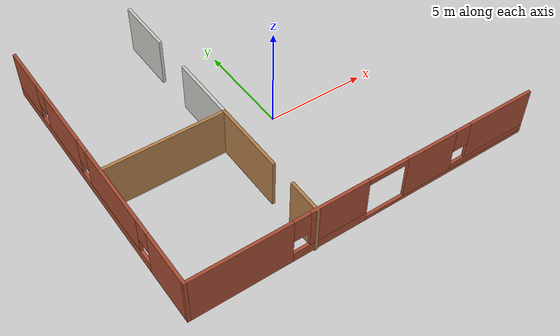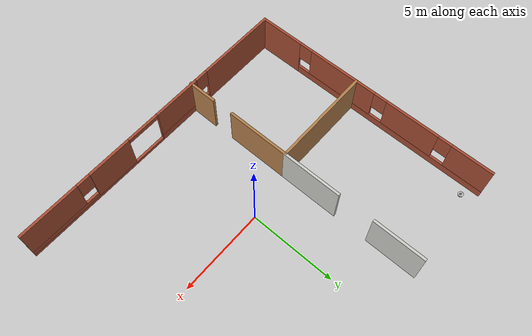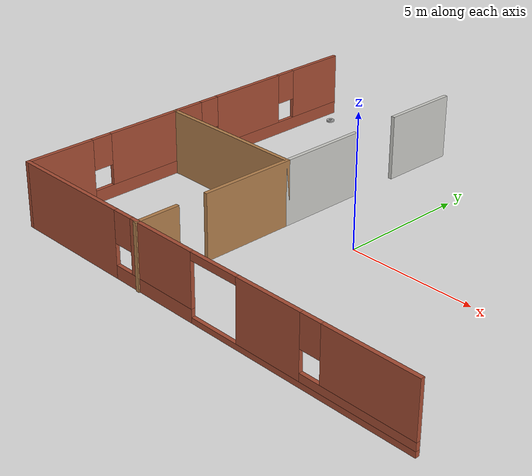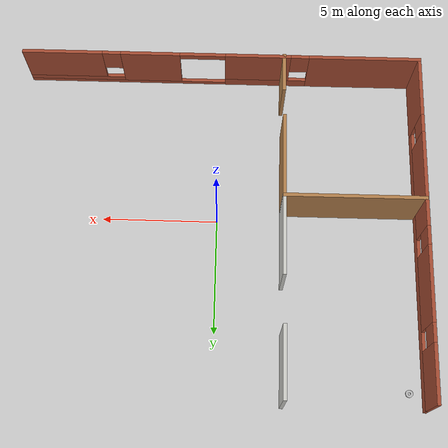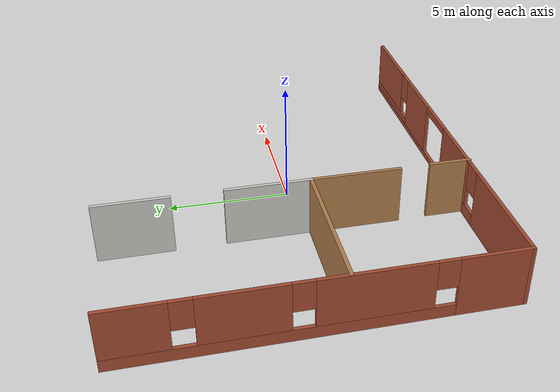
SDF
<sdf version="1.6">
 <model name="BuildingOne">
  <link name="Wall_0">
   <pose>-8.67851 0.522825 0 0 -0 1.5708</pose>
   <visual name="Wall_0_Visual_0">
    <pose>-6.13494 0 1.25 0 -0 0</pose>
    <geometry><box><size>2.73012 0.15 2.5</size></box></geometry>
    <material>
     <script><uri>file://media/materials/scripts/gazebo.material</uri><name>Gazebo/Bricks</name></script>
     <ambient>1 1 1 1</ambient>
     <shader type="pixel"/>
     <diffuse>1 1 1 1</diffuse>
     <specular>0.2 0.2 0.2 1</specular>
     <emissive>0 0 0 1</emissive>
    </material>
    <meta><layer>0</layer></meta>
   </visual>
   <visual name="Wall_0_Visual_1">
    <pose>1.36506 0 0.25 0 -0 0</pose>
    <geometry><box><size>12.2699 0.15 0.5</size></box></geometry>
    <material>
     <script><uri>file://media/materials/scripts/gazebo.material</uri><name>Gazebo/Bricks</name></script>
     <ambient>1 1 1 1</ambient>
     <shader type="pixel"/>
     <diffuse>1 1 1 1</diffuse>
     <specular>0.2 0.2 0.2 1</specular>
     <emissive>0 0 0 1</emissive>
    </material>
    <meta><layer>0</layer></meta>
   </visual>
   <visual name="Wall_0_Visual_2">
    <pose>-1.85526 0 1.5 0 -0 0</pose>
    <geometry><box><size>4.22924 0.15 2</size></box></geometry>
    <material>
     <script><uri>file://media/materials/scripts/gazebo.material</uri><name>Gazebo/Bricks</name></script>
     <ambient>1 1 1 1</ambient>
     <shader type="pixel"/>
     <diffuse>1 1 1 1</diffuse>
     <specular>0.2 0.2 0.2 1</specular>
     <emissive>0 0 0 1</emissive>
    </material>
    <meta><layer>0</layer></meta>
   </visual>
   <visual name="Wall_0_Visual_3">
    <pose>2.6657 0 1.5 0 -0 0</pose>
    <geometry><box><size>3.21269 0.15 2</size></box></geometry>
    <material>
     <script><uri>file://media/materials/scripts/gazebo.material</uri><name>Gazebo/Bricks</name></script>
     <ambient>1 1 1 1</ambient>
     <shader type="pixel"/>
     <diffuse>1 1 1 1</diffuse>
     <specular>0.2 0.2 0.2 1</specular>
     <emissive>0 0 0 1</emissive>
    </material>
    <meta><layer>0</layer></meta>
   </visual>
   <visual name="Wall_0_Visual_4">
    <pose>6.28602 0 1.5 0 -0 0</pose>
    <geometry><box><size>2.42796 0.15 2</size></box></geometry>
    <material>
     <script><uri>file://media/materials/scripts/gazebo.material</uri><name>Gazebo/Bricks</name></script>
     <ambient>1 1 1 1</ambient>
     <shader type="pixel"/>
     <diffuse>1 1 1 1</diffuse>
     <specular>0.2 0.2 0.2 1</specular>
     <emissive>0 0 0 1</emissive>
    </material>
    <meta><layer>0</layer></meta>
   </visual>
   <visual name="Wall_0_Visual_5">
    <pose>-4.36988 0 1.9 0 -0 0</pose>
    <geometry><box><size>0.8 0.15 1.2</size></box></geometry>
    <material>
     <script><uri>file://media/materials/scripts/gazebo.material</uri><name>Gazebo/Bricks</name></script>
     <ambient>1 1 1 1</ambient>
     <shader type="pixel"/>
     <diffuse>1 1 1 1</diffuse>
     <specular>0.2 0.2 0.2 1</specular>
     <emissive>0 0 0 1</emissive>
    </material>
    <meta><layer>0</layer></meta>
   </visual>
   <visual name="Wall_0_Visual_6">
    <pose>0.659356 0 1.9 0 -0 0</pose>
    <geometry><box><size>0.8 0.15 1.2</size></box></geometry>
    <material>
     <script><uri>file://media/materials/scripts/gazebo.material</uri><name>Gazebo/Bricks</name></script>
     <ambient>1 1 1 1</ambient>
     <shader type="pixel"/>
     <diffuse>1 1 1 1</diffuse>
     <specular>0.2 0.2 0.2 1</specular>
     <emissive>0 0 0 1</emissive>
    </material>
    <meta><layer>0</layer></meta>
   </visual>
   <visual name="Wall_0_Visual_7">
    <pose>4.67204 0 1.9 0 -0 0</pose>
    <geometry><box><size>0.8 0.15 1.2</size></box></geometry>
    <material>
     <script><uri>file://media/materials/scripts/gazebo.material</uri><name>Gazebo/Bricks</name></script>
     <ambient>1 1 1 1</ambient>
     <shader type="pixel"/>
     <diffuse>1 1 1 1</diffuse>
     <specular>0.2 0.2 0.2 1</specular>
     <emissive>0 0 0 1</emissive>
    </material>
    <meta><layer>0</layer></meta>
   </visual>
   <collision name="Wall_0_Collision_0">
    <pose>-6.13494 0 1.25 0 -0 0</pose>
    <geometry><box><size>2.73012 0.15 2.5</size></box></geometry>
    <surface>
     <friction>
      <ode><mu>1</mu><mu2>1</mu2><fdir1>0 0 0</fdir1><slip1>0</slip1><slip2>0</slip2></ode>
      <torsional>
       <coefficient>1</coefficient>
       <patch_radius>0</patch_radius>
       <surface_radius>0</surface_radius>
       <use_patch_radius>1</use_patch_radius>
       <ode><slip>0</slip></ode>
      </torsional>
     </friction>
     <bounce><restitution_coefficient>0</restitution_coefficient><threshold>1e+06</threshold></bounce>
     <contact>
      <collide_without_contact>0</collide_without_contact>
      <collide_without_contact_bitmask>1</collide_without_contact_bitmask>
      <collide_bitmask>1</collide_bitmask>
      <ode>
       <soft_cfm>0</soft_cfm>
       <soft_erp>0.2</soft_erp>
       <kp>1e+13</kp>
       <kd>1</kd>
       <max_vel>0.01</max_vel>
       <min_depth>0</min_depth>
      </ode>
      <bullet>
       <split_impulse>1</split_impulse>
       <split_impulse_penetration_threshold>-0.01</split_impulse_penetration_threshold>
       <soft_cfm>0</soft_cfm>
       <soft_erp>0.2</soft_erp>
       <kp>1e+13</kp>
       <kd>1</kd>
      </bullet>
     </contact>
    </surface>
   </collision>
   <collision name="Wall_0_Collision_2">
    <pose>-1.85526 0 1.5 0 -0 0</pose>
    <geometry><box><size>4.22924 0.15 2</size></box></geometry>
    <surface>
     <friction>
      <ode><mu>1</mu><mu2>1</mu2><fdir1>0 0 0</fdir1><slip1>0</slip1><slip2>0</slip2></ode>
      <torsional>
       <coefficient>1</coefficient>
       <patch_radius>0</patch_radius>
       <surface_radius>0</surface_radius>
       <use_patch_radius>1</use_patch_radius>
       <ode><slip>0</slip></ode>
      </torsional>
     </friction>
     <bounce><restitution_coefficient>0</restitution_coefficient><threshold>1e+06</threshold></bounce>
     <contact>
      <collide_without_contact>0</collide_without_contact>
      <collide_without_contact_bitmask>1</collide_without_contact_bitmask>
      <collide_bitmask>1</collide_bitmask>
      <ode>
       <soft_cfm>0</soft_cfm>
       <soft_erp>0.2</soft_erp>
       <kp>1e+13</kp>
       <kd>1</kd>
       <max_vel>0.01</max_vel>
       <min_depth>0</min_depth>
      </ode>
      <bullet>
       <split_impulse>1</split_impulse>
       <split_impulse_penetration_threshold>-0.01</split_impulse_penetration_threshold>
       <soft_cfm>0</soft_cfm>
       <soft_erp>0.2</soft_erp>
       <kp>1e+13</kp>
       <kd>1</kd>
      </bullet>
     </contact>
    </surface>
   </collision>
   <collision name="Wall_0_Collision_1">
    <pose>1.36506 0 0.25 0 -0 0</pose>
    <geometry><box><size>12.2699 0.15 0.5</size></box></geometry>
    <surface>
     <friction>
      <ode><mu>1</mu><mu2>1</mu2><fdir1>0 0 0</fdir1><slip1>0</slip1><slip2>0</slip2></ode>
      <torsional>
       <coefficient>1</coefficient>
       <patch_radius>0</patch_radius>
       <surface_radius>0</surface_radius>
       <use_patch_radius>1</use_patch_radius>
       <ode><slip>0</slip></ode>
      </torsional>
     </friction>
     <bounce><restitution_coefficient>0</restitution_coefficient><threshold>1e+06</threshold></bounce>
     <contact>
      <collide_without_contact>0</collide_without_contact>
      <collide_without_contact_bitmask>1</collide_without_contact_bitmask>
      <collide_bitmask>1</collide_bitmask>
      <ode>
       <soft_cfm>0</soft_cfm>
       <soft_erp>0.2</soft_erp>
       <kp>1e+13</kp>
       <kd>1</kd>
       <max_vel>0.01</max_vel>
       <min_depth>0</min_depth>
      </ode>
      <bullet>
       <split_impulse>1</split_impulse>
       <split_impulse_penetration_threshold>-0.01</split_impulse_penetration_threshold>
       <soft_cfm>0</soft_cfm>
       <soft_erp>0.2</soft_erp>
       <kp>1e+13</kp>
       <kd>1</kd>
      </bullet>
     </contact>
    </surface>
   </collision>
   <collision name="Wall_0_Collision_4">
    <pose>6.28602 0 1.5 0 -0 0</pose>
    <geometry><box><size>2.42796 0.15 2</size></box></geometry>
    <surface>
     <friction>
      <ode><mu>1</mu><mu2>1</mu2><fdir1>0 0 0</fdir1><slip1>0</slip1><slip2>0</slip2></ode>
      <torsional>
       <coefficient>1</coefficient>
       <patch_radius>0</patch_radius>
       <surface_radius>0</surface_radius>
       <use_patch_radius>1</use_patch_radius>
       <ode><slip>0</slip></ode>
      </torsional>
     </friction>
     <bounce><restitution_coefficient>0</restitution_coefficient><threshold>1e+06</threshold></bounce>
     <contact>
      <collide_without_contact>0</collide_without_contact>
      <collide_without_contact_bitmask>1</collide_without_contact_bitmask>
      <collide_bitmask>1</collide_bitmask>
      <ode>
       <soft_cfm>0</soft_cfm>
       <soft_erp>0.2</soft_erp>
       <kp>1e+13</kp>
       <kd>1</kd>
       <max_vel>0.01</max_vel>
       <min_depth>0</min_depth>
      </ode>
      <bullet>
       <split_impulse>1</split_impulse>
       <split_impulse_penetration_threshold>-0.01</split_impulse_penetration_threshold>
       <soft_cfm>0</soft_cfm>
       <soft_erp>0.2</soft_erp>
       <kp>1e+13</kp>
       <kd>1</kd>
      </bullet>
     </contact>
    </surface>
   </collision>
   <collision name="Wall_0_Collision_3">
    <pose>2.6657 0 1.5 0 -0 0</pose>
    <geometry><box><size>3.21269 0.15 2</size></box></geometry>
    <surface>
     <friction>
      <ode><mu>1</mu><mu2>1</mu2><fdir1>0 0 0</fdir1><slip1>0</slip1><slip2>0</slip2></ode>
      <torsional>
       <coefficient>1</coefficient>
       <patch_radius>0</patch_radius>
       <surface_radius>0</surface_radius>
       <use_patch_radius>1</use_patch_radius>
       <ode><slip>0</slip></ode>
      </torsional>
     </friction>
     <bounce><restitution_coefficient>0</restitution_coefficient><threshold>1e+06</threshold></bounce>
     <contact>
      <collide_without_contact>0</collide_without_contact>
      <collide_without_contact_bitmask>1</collide_without_contact_bitmask>
      <collide_bitmask>1</collide_bitmask>
      <ode>
       <soft_cfm>0</soft_cfm>
       <soft_erp>0.2</soft_erp>
       <kp>1e+13</kp>
       <kd>1</kd>
       <max_vel>0.01</max_vel>
       <min_depth>0</min_depth>
      </ode>
      <bullet>
       <split_impulse>1</split_impulse>
       <split_impulse_penetration_threshold>-0.01</split_impulse_penetration_threshold>
       <soft_cfm>0</soft_cfm>
       <soft_erp>0.2</soft_erp>
       <kp>1e+13</kp>
       <kd>1</kd>
      </bullet>
     </contact>
    </surface>
   </collision>
   <collision name="Wall_0_Collision_5">
    <pose>-4.36988 0 1.9 0 -0 0</pose>
    <geometry><box><size>0.8 0.15 1.2</size></box></geometry>
    <surface>
     <friction>
      <ode><mu>1</mu><mu2>1</mu2><fdir1>0 0 0</fdir1><slip1>0</slip1><slip2>0</slip2></ode>
      <torsional>
       <coefficient>1</coefficient>
       <patch_radius>0</patch_radius>
       <surface_radius>0</surface_radius>
       <use_patch_radius>1</use_patch_radius>
       <ode><slip>0</slip></ode>
      </torsional>
     </friction>
     <bounce><restitution_coefficient>0</restitution_coefficient><threshold>1e+06</threshold></bounce>
     <contact>
      <collide_without_contact>0</collide_without_contact>
      <collide_without_contact_bitmask>1</collide_without_contact_bitmask>
      <collide_bitmask>1</collide_bitmask>
      <ode>
       <soft_cfm>0</soft_cfm>
       <soft_erp>0.2</soft_erp>
       <kp>1e+13</kp>
       <kd>1</kd>
       <max_vel>0.01</max_vel>
       <min_depth>0</min_depth>
      </ode>
      <bullet>
       <split_impulse>1</split_impulse>
       <split_impulse_penetration_threshold>-0.01</split_impulse_penetration_threshold>
       <soft_cfm>0</soft_cfm>
       <soft_erp>0.2</soft_erp>
       <kp>1e+13</kp>
       <kd>1</kd>
      </bullet>
     </contact>
    </surface>
   </collision>
   <collision name="Wall_0_Collision_7">
    <pose>4.67204 0 1.9 0 -0 0</pose>
    <geometry><box><size>0.8 0.15 1.2</size></box></geometry>
    <surface>
     <friction>
      <ode><mu>1</mu><mu2>1</mu2><fdir1>0 0 0</fdir1><slip1>0</slip1><slip2>0</slip2></ode>
      <torsional>
       <coefficient>1</coefficient>
       <patch_radius>0</patch_radius>
       <surface_radius>0</surface_radius>
       <use_patch_radius>1</use_patch_radius>
       <ode><slip>0</slip></ode>
      </torsional>
     </friction>
     <bounce><restitution_coefficient>0</restitution_coefficient><threshold>1e+06</threshold></bounce>
     <contact>
      <collide_without_contact>0</collide_without_contact>
      <collide_without_contact_bitmask>1</collide_without_contact_bitmask>
      <collide_bitmask>1</collide_bitmask>
      <ode>
       <soft_cfm>0</soft_cfm>
       <soft_erp>0.2</soft_erp>
       <kp>1e+13</kp>
       <kd>1</kd>
       <max_vel>0.01</max_vel>
       <min_depth>0</min_depth>
      </ode>
      <bullet>
       <split_impulse>1</split_impulse>
       <split_impulse_penetration_threshold>-0.01</split_impulse_penetration_threshold>
       <soft_cfm>0</soft_cfm>
       <soft_erp>0.2</soft_erp>
       <kp>1e+13</kp>
       <kd>1</kd>
      </bullet>
     </contact>
    </surface>
   </collision>
   <collision name="Wall_0_Collision_6">
    <pose>0.659356 0 1.9 0 -0 0</pose>
    <geometry><box><size>0.8 0.15 1.2</size></box></geometry>
    <surface>
     <friction>
      <ode><mu>1</mu><mu2>1</mu2><fdir1>0 0 0</fdir1><slip1>0</slip1><slip2>0</slip2></ode>
      <torsional>
       <coefficient>1</coefficient>
       <patch_radius>0</patch_radius>
       <surface_radius>0</surface_radius>
       <use_patch_radius>1</use_patch_radius>
       <ode><slip>0</slip></ode>
      </torsional>
     </friction>
     <bounce><restitution_coefficient>0</restitution_coefficient><threshold>1e+06</threshold></bounce>
     <contact>
      <collide_without_contact>0</collide_without_contact>
      <collide_without_contact_bitmask>1</collide_without_contact_bitmask>
      <collide_bitmask>1</collide_bitmask>
      <ode>
       <soft_cfm>0</soft_cfm>
       <soft_erp>0.2</soft_erp>
       <kp>1e+13</kp>
       <kd>1</kd>
       <max_vel>0.01</max_vel>
       <min_depth>0</min_depth>
      </ode>
      <bullet>
       <split_impulse>1</split_impulse>
       <split_impulse_penetration_threshold>-0.01</split_impulse_penetration_threshold>
       <soft_cfm>0</soft_cfm>
       <soft_erp>0.2</soft_erp>
       <kp>1e+13</kp>
       <kd>1</kd>
      </bullet>
     </contact>
    </surface>
   </collision>
  </link>
  <link name="Wall_15">
   <pose>-5.72816 -0.422895 0 0 -0 0</pose>
   <visual name="Wall_15_Visual">
    <pose>0 0 1.25 0 -0 0</pose>
    <geometry><box><size>6 0.15 2.5</size></box></geometry>
    <material>
     <script><uri>file://media/materials/scripts/gazebo.material</uri><name>Gazebo/Wood</name></script>
     <ambient>1 1 1 1</ambient>
     <shader type="pixel"/>
     <diffuse>1 1 1 1</diffuse>
     <specular>0.2 0.2 0.2 1</specular>
     <emissive>0 0 0 1</emissive>
    </material>
    <meta><layer>0</layer></meta>
   </visual>
   <collision name="Wall_15_Collision">
    <pose>0 0 1.25 0 -0 0</pose>
    <geometry><box><size>6 0.15 2.5</size></box></geometry>
    <surface>
     <friction>
      <ode><mu>1</mu><mu2>1</mu2><fdir1>0 0 0</fdir1><slip1>0</slip1><slip2>0</slip2></ode>
      <torsional>
       <coefficient>1</coefficient>
       <patch_radius>0</patch_radius>
       <surface_radius>0</surface_radius>
       <use_patch_radius>1</use_patch_radius>
       <ode><slip>0</slip></ode>
      </torsional>
     </friction>
     <bounce><restitution_coefficient>0</restitution_coefficient><threshold>1e+06</threshold></bounce>
     <contact>
      <collide_without_contact>0</collide_without_contact>
      <collide_without_contact_bitmask>1</collide_without_contact_bitmask>
      <collide_bitmask>1</collide_bitmask>
      <ode>
       <soft_cfm>0</soft_cfm>
       <soft_erp>0.2</soft_erp>
       <kp>1e+13</kp>
       <kd>1</kd>
       <max_vel>0.01</max_vel>
       <min_depth>0</min_depth>
      </ode>
      <bullet>
       <split_impulse>1</split_impulse>
       <split_impulse_penetration_threshold>-0.01</split_impulse_penetration_threshold>
       <soft_cfm>0</soft_cfm>
       <soft_erp>0.2</soft_erp>
       <kp>1e+13</kp>
       <kd>1</kd>
      </bullet>
     </contact>
    </surface>
   </collision>
  </link>
  <link name="Wall_16">
   <pose>-2.80315 -2.22289 0 0 0 -1.5708</pose>
   <visual name="Wall_16_Visual">
    <pose>0 0 1.25 0 -0 0</pose>
    <geometry><box><size>3.75 0.15 2.5</size></box></geometry>
    <material>
     <script><uri>file://media/materials/scripts/gazebo.material</uri><name>Gazebo/Wood</name></script>
     <ambient>1 1 1 1</ambient>
     <shader type="pixel"/>
     <diffuse>1 1 1 1</diffuse>
     <specular>0.2 0.2 0.2 1</specular>
     <emissive>0 0 0 1</emissive>
    </material>
    <meta><layer>0</layer></meta>
   </visual>
   <collision name="Wall_16_Collision">
    <pose>0 0 1.25 0 -0 0</pose>
    <geometry><box><size>3.75 0.15 2.5</size></box></geometry>
    <surface>
     <friction>
      <ode><mu>1</mu><mu2>1</mu2><fdir1>0 0 0</fdir1><slip1>0</slip1><slip2>0</slip2></ode>
      <torsional>
       <coefficient>1</coefficient>
       <patch_radius>0</patch_radius>
       <surface_radius>0</surface_radius>
       <use_patch_radius>1</use_patch_radius>
       <ode><slip>0</slip></ode>
      </torsional>
     </friction>
     <bounce><restitution_coefficient>0</restitution_coefficient><threshold>1e+06</threshold></bounce>
     <contact>
      <collide_without_contact>0</collide_without_contact>
      <collide_without_contact_bitmask>1</collide_without_contact_bitmask>
      <collide_bitmask>1</collide_bitmask>
      <ode>
       <soft_cfm>0</soft_cfm>
       <soft_erp>0.2</soft_erp>
       <kp>1e+13</kp>
       <kd>1</kd>
       <max_vel>0.01</max_vel>
       <min_depth>0</min_depth>
      </ode>
      <bullet>
       <split_impulse>1</split_impulse>
       <split_impulse_penetration_threshold>-0.01</split_impulse_penetration_threshold>
       <soft_cfm>0</soft_cfm>
       <soft_erp>0.2</soft_erp>
       <kp>1e+13</kp>
       <kd>1</kd>
      </bullet>
     </contact>
    </surface>
   </collision>
  </link>
  <link name="Wall_18">
   <pose>-2.76788 -6.1502 0 0 -0 1.5708</pose>
   <visual name="Wall_18_Visual">
    <pose>0 0 1.25 0 -0 0</pose>
    <geometry><box><size>1.75 0.15 2.5</size></box></geometry>
    <material>
     <script><uri>file://media/materials/scripts/gazebo.material</uri><name>Gazebo/Wood</name></script>
     <ambient>1 1 1 1</ambient>
     <shader type="pixel"/>
     <diffuse>1 1 1 1</diffuse>
     <specular>0.2 0.2 0.2 1</specular>
     <emissive>0 0 0 1</emissive>
    </material>
    <meta><layer>0</layer></meta>
   </visual>
   <collision name="Wall_18_Collision">
    <pose>0 0 1.25 0 -0 0</pose>
    <geometry><box><size>1.75 0.15 2.5</size></box></geometry>
    <surface>
     <friction>
      <ode><mu>1</mu><mu2>1</mu2><fdir1>0 0 0</fdir1><slip1>0</slip1><slip2>0</slip2></ode>
      <torsional>
       <coefficient>1</coefficient>
       <patch_radius>0</patch_radius>
       <surface_radius>0</surface_radius>
       <use_patch_radius>1</use_patch_radius>
       <ode><slip>0</slip></ode>
      </torsional>
     </friction>
     <bounce><restitution_coefficient>0</restitution_coefficient><threshold>1e+06</threshold></bounce>
     <contact>
      <collide_without_contact>0</collide_without_contact>
      <collide_without_contact_bitmask>1</collide_without_contact_bitmask>
      <collide_bitmask>1</collide_bitmask>
      <ode>
       <soft_cfm>0</soft_cfm>
       <soft_erp>0.2</soft_erp>
       <kp>1e+13</kp>
       <kd>1</kd>
       <max_vel>0.01</max_vel>
       <min_depth>0</min_depth>
      </ode>
      <bullet>
       <split_impulse>1</split_impulse>
       <split_impulse_penetration_threshold>-0.01</split_impulse_penetration_threshold>
       <soft_cfm>0</soft_cfm>
       <soft_erp>0.2</soft_erp>
       <kp>1e+13</kp>
       <kd>1</kd>
      </bullet>
     </contact>
    </surface>
   </collision>
  </link>
  <link name="Wall_2">
   <pose>-0.00351 -6.90217 0 0 -0 0</pose>
   <visual name="Wall_2_Visual_0">
    <pose>-6.30495 0 1.25 0 -0 0</pose>
    <geometry><box><size>4.8901 0.15 2.5</size></box></geometry>
    <material>
     <script><uri>file://media/materials/scripts/gazebo.material</uri><name>Gazebo/Bricks</name></script>
     <ambient>1 1 1 1</ambient>
     <shader type="pixel"/>
     <diffuse>1 1 1 1</diffuse>
     <specular>0.2 0.2 0.2 1</specular>
     <emissive>0 0 0 1</emissive>
    </material>
    <meta><layer>0</layer></meta>
   </visual>
   <visual name="Wall_2_Visual_1">
    <pose>-2.0198 0 0.25 0 -0 0</pose>
    <geometry><box><size>3.6802 0.15 0.5</size></box></geometry>
    <material>
     <script><uri>file://media/materials/scripts/gazebo.material</uri><name>Gazebo/Bricks</name></script>
     <ambient>1 1 1 1</ambient>
     <shader type="pixel"/>
     <diffuse>1 1 1 1</diffuse>
     <specular>0.2 0.2 0.2 1</specular>
     <emissive>0 0 0 1</emissive>
    </material>
    <meta><layer>0</layer></meta>
   </visual>
   <visual name="Wall_2_Visual_2">
    <pose>4.28515 0 0.105 0 -0 0</pose>
    <geometry><box><size>8.9297 0.15 0.21</size></box></geometry>
    <material>
     <script><uri>file://media/materials/scripts/gazebo.material</uri><name>Gazebo/Bricks</name></script>
     <ambient>1 1 1 1</ambient>
     <shader type="pixel"/>
     <diffuse>1 1 1 1</diffuse>
     <specular>0.2 0.2 0.2 1</specular>
     <emissive>0 0 0 1</emissive>
    </material>
    <meta><layer>0</layer></meta>
   </visual>
   <visual name="Wall_2_Visual_3">
    <pose>3.12664 0 1.355 0 -0 0</pose>
    <geometry><box><size>2.61269 0.15 2.29</size></box></geometry>
    <material>
     <script><uri>file://media/materials/scripts/gazebo.material</uri><name>Gazebo/Bricks</name></script>
     <ambient>1 1 1 1</ambient>
     <shader type="pixel"/>
     <diffuse>1 1 1 1</diffuse>
     <specular>0.2 0.2 0.2 1</specular>
     <emissive>0 0 0 1</emissive>
    </material>
    <meta><layer>0</layer></meta>
   </visual>
   <visual name="Wall_2_Visual_4">
    <pose>6.59149 0 0.355 0 -0 0</pose>
    <geometry><box><size>4.31701 0.15 0.29</size></box></geometry>
    <material>
     <script><uri>file://media/materials/scripts/gazebo.material</uri><name>Gazebo/Bricks</name></script>
     <ambient>1 1 1 1</ambient>
     <shader type="pixel"/>
     <diffuse>1 1 1 1</diffuse>
     <specular>0.2 0.2 0.2 1</specular>
     <emissive>0 0 0 1</emissive>
    </material>
    <meta><layer>0</layer></meta>
   </visual>
   <visual name="Wall_2_Visual_5">
    <pose>-1.6198 0 1.5 0 -0 0</pose>
    <geometry><box><size>2.8802 0.15 2</size></box></geometry>
    <material>
     <script><uri>file://media/materials/scripts/gazebo.material</uri><name>Gazebo/Bricks</name></script>
     <ambient>1 1 1 1</ambient>
     <shader type="pixel"/>
     <diffuse>1 1 1 1</diffuse>
     <specular>0.2 0.2 0.2 1</specular>
     <emissive>0 0 0 1</emissive>
    </material>
    <meta><layer>0</layer></meta>
   </visual>
   <visual name="Wall_2_Visual_6">
    <pose>-1.6198 0 1.5 0 -0 0</pose>
    <geometry><box><size>2.8802 0.15 2</size></box></geometry>
    <material>
     <script><uri>file://media/materials/scripts/gazebo.material</uri><name>Gazebo/Bricks</name></script>
     <ambient>1 1 1 1</ambient>
     <shader type="pixel"/>
     <diffuse>1 1 1 1</diffuse>
     <specular>0.2 0.2 0.2 1</specular>
     <emissive>0 0 0 1</emissive>
    </material>
    <meta><layer>0</layer></meta>
   </visual>
   <visual name="Wall_2_Visual_7">
    <pose>6.99149 0 1.5 0 -0 0</pose>
    <geometry><box><size>3.51701 0.15 2</size></box></geometry>
    <material>
     <script><uri>file://media/materials/scripts/gazebo.material</uri><name>Gazebo/Bricks</name></script>
     <ambient>1 1 1 1</ambient>
     <shader type="pixel"/>
     <diffuse>1 1 1 1</diffuse>
     <specular>0.2 0.2 0.2 1</specular>
     <emissive>0 0 0 1</emissive>
    </material>
    <meta><layer>0</layer></meta>
   </visual>
   <visual name="Wall_2_Visual_8">
    <pose>-3.4599 0 1.9 0 -0 0</pose>
    <geometry><box><size>0.8 0.15 1.2</size></box></geometry>
    <material>
     <script><uri>file://media/materials/scripts/gazebo.material</uri><name>Gazebo/Bricks</name></script>
     <ambient>1 1 1 1</ambient>
     <shader type="pixel"/>
     <diffuse>1 1 1 1</diffuse>
     <specular>0.2 0.2 0.2 1</specular>
     <emissive>0 0 0 1</emissive>
    </material>
    <meta><layer>0</layer></meta>
   </visual>
   <visual name="Wall_2_Visual_9">
    <pose>4.83298 0 1.9 0 -0 0</pose>
    <geometry><box><size>0.8 0.15 1.2</size></box></geometry>
    <material>
     <script><uri>file://media/materials/scripts/gazebo.material</uri><name>Gazebo/Bricks</name></script>
     <ambient>1 1 1 1</ambient>
     <shader type="pixel"/>
     <diffuse>1 1 1 1</diffuse>
     <specular>0.2 0.2 0.2 1</specular>
     <emissive>0 0 0 1</emissive>
    </material>
    <meta><layer>0</layer></meta>
   </visual>
   <visual name="Wall_2_Visual_10">
    <pose>0.820298 0 2.355 0 -0 0</pose>
    <geometry><box><size>2 0.15 0.29</size></box></geometry>
    <material>
     <script><uri>file://media/materials/scripts/gazebo.material</uri><name>Gazebo/Bricks</name></script>
     <ambient>1 1 1 1</ambient>
     <shader type="pixel"/>
     <diffuse>1 1 1 1</diffuse>
     <specular>0.2 0.2 0.2 1</specular>
     <emissive>0 0 0 1</emissive>
    </material>
    <meta><layer>0</layer></meta>
   </visual>
   <visual name="Wall_2_Visual_11">
    <pose>0.820298 0 2.355 0 -0 0</pose>
    <geometry><box><size>2 0.15 0.29</size></box></geometry>
    <material>
     <script><uri>file://media/materials/scripts/gazebo.material</uri><name>Gazebo/Bricks</name></script>
     <ambient>1 1 1 1</ambient>
     <shader type="pixel"/>
     <diffuse>1 1 1 1</diffuse>
     <specular>0.2 0.2 0.2 1</specular>
     <emissive>0 0 0 1</emissive>
    </material>
    <meta><layer>0</layer></meta>
   </visual>
   <collision name="Wall_2_Collision_0">
    <pose>-6.30495 0 1.25 0 -0 0</pose>
    <geometry><box><size>4.8901 0.15 2.5</size></box></geometry>
    <surface>
     <friction>
      <ode><mu>1</mu><mu2>1</mu2><fdir1>0 0 0</fdir1><slip1>0</slip1><slip2>0</slip2></ode>
      <torsional>
       <coefficient>1</coefficient>
       <patch_radius>0</patch_radius>
       <surface_radius>0</surface_radius>
       <use_patch_radius>1</use_patch_radius>
       <ode><slip>0</slip></ode>
      </torsional>
     </friction>
     <bounce><restitution_coefficient>0</restitution_coefficient><threshold>1e+06</threshold></bounce>
     <contact>
      <collide_without_contact>0</collide_without_contact>
      <collide_without_contact_bitmask>1</collide_without_contact_bitmask>
      <collide_bitmask>1</collide_bitmask>
      <ode>
       <soft_cfm>0</soft_cfm>
       <soft_erp>0.2</soft_erp>
       <kp>1e+13</kp>
       <kd>1</kd>
       <max_vel>0.01</max_vel>
       <min_depth>0</min_depth>
      </ode>
      <bullet>
       <split_impulse>1</split_impulse>
       <split_impulse_penetration_threshold>-0.01</split_impulse_penetration_threshold>
       <soft_cfm>0</soft_cfm>
       <soft_erp>0.2</soft_erp>
       <kp>1e+13</kp>
       <kd>1</kd>
      </bullet>
     </contact>
    </surface>
   </collision>
   <collision name="Wall_2_Collision_1">
    <pose>-2.0198 0 0.25 0 -0 0</pose>
    <geometry><box><size>3.6802 0.15 0.5</size></box></geometry>
    <surface>
     <friction>
      <ode><mu>1</mu><mu2>1</mu2><fdir1>0 0 0</fdir1><slip1>0</slip1><slip2>0</slip2></ode>
      <torsional>
       <coefficient>1</coefficient>
       <patch_radius>0</patch_radius>
       <surface_radius>0</surface_radius>
       <use_patch_radius>1</use_patch_radius>
       <ode><slip>0</slip></ode>
      </torsional>
     </friction>
     <bounce><restitution_coefficient>0</restitution_coefficient><threshold>1e+06</threshold></bounce>
     <contact>
      <collide_without_contact>0</collide_without_contact>
      <collide_without_contact_bitmask>1</collide_without_contact_bitmask>
      <collide_bitmask>1</collide_bitmask>
      <ode>
       <soft_cfm>0</soft_cfm>
       <soft_erp>0.2</soft_erp>
       <kp>1e+13</kp>
       <kd>1</kd>
       <max_vel>0.01</max_vel>
       <min_depth>0</min_depth>
      </ode>
      <bullet>
       <split_impulse>1</split_impulse>
       <split_impulse_penetration_threshold>-0.01</split_impulse_penetration_threshold>
       <soft_cfm>0</soft_cfm>
       <soft_erp>0.2</soft_erp>
       <kp>1e+13</kp>
       <kd>1</kd>
      </bullet>
     </contact>
    </surface>
   </collision>
   <collision name="Wall_2_Collision_2">
    <pose>4.28515 0 0.105 0 -0 0</pose>
    <geometry><box><size>8.9297 0.15 0.21</size></box></geometry>
    <surface>
     <friction>
      <ode><mu>1</mu><mu2>1</mu2><fdir1>0 0 0</fdir1><slip1>0</slip1><slip2>0</slip2></ode>
      <torsional>
       <coefficient>1</coefficient>
       <patch_radius>0</patch_radius>
       <surface_radius>0</surface_radius>
       <use_patch_radius>1</use_patch_radius>
       <ode><slip>0</slip></ode>
      </torsional>
     </friction>
     <bounce><restitution_coefficient>0</restitution_coefficient><threshold>1e+06</threshold></bounce>
     <contact>
      <collide_without_contact>0</collide_without_contact>
      <collide_without_contact_bitmask>1</collide_without_contact_bitmask>
      <collide_bitmask>1</collide_bitmask>
      <ode>
       <soft_cfm>0</soft_cfm>
       <soft_erp>0.2</soft_erp>
       <kp>1e+13</kp>
       <kd>1</kd>
       <max_vel>0.01</max_vel>
       <min_depth>0</min_depth>
      </ode>
      <bullet>
       <split_impulse>1</split_impulse>
       <split_impulse_penetration_threshold>-0.01</split_impulse_penetration_threshold>
       <soft_cfm>0</soft_cfm>
       <soft_erp>0.2</soft_erp>
       <kp>1e+13</kp>
       <kd>1</kd>
      </bullet>
     </contact>
    </surface>
   </collision>
   <collision name="Wall_2_Collision_3">
    <pose>3.12664 0 1.355 0 -0 0</pose>
    <geometry><box><size>2.61269 0.15 2.29</size></box></geometry>
    <surface>
     <friction>
      <ode><mu>1</mu><mu2>1</mu2><fdir1>0 0 0</fdir1><slip1>0</slip1><slip2>0</slip2></ode>
      <torsional>
       <coefficient>1</coefficient>
       <patch_radius>0</patch_radius>
       <surface_radius>0</surface_radius>
       <use_patch_radius>1</use_patch_radius>
       <ode><slip>0</slip></ode>
      </torsional>
     </friction>
     <bounce><restitution_coefficient>0</restitution_coefficient><threshold>1e+06</threshold></bounce>
     <contact>
      <collide_without_contact>0</collide_without_contact>
      <collide_without_contact_bitmask>1</collide_without_contact_bitmask>
      <collide_bitmask>1</collide_bitmask>
      <ode>
       <soft_cfm>0</soft_cfm>
       <soft_erp>0.2</soft_erp>
       <kp>1e+13</kp>
       <kd>1</kd>
       <max_vel>0.01</max_vel>
       <min_depth>0</min_depth>
      </ode>
      <bullet>
       <split_impulse>1</split_impulse>
       <split_impulse_penetration_threshold>-0.01</split_impulse_penetration_threshold>
       <soft_cfm>0</soft_cfm>
       <soft_erp>0.2</soft_erp>
       <kp>1e+13</kp>
       <kd>1</kd>
      </bullet>
     </contact>
    </surface>
   </collision>
   <collision name="Wall_2_Collision_4">
    <pose>6.59149 0 0.355 0 -0 0</pose>
    <geometry><box><size>4.31701 0.15 0.29</size></box></geometry>
    <surface>
     <friction>
      <ode><mu>1</mu><mu2>1</mu2><fdir1>0 0 0</fdir1><slip1>0</slip1><slip2>0</slip2></ode>
      <torsional>
       <coefficient>1</coefficient>
       <patch_radius>0</patch_radius>
       <surface_radius>0</surface_radius>
       <use_patch_radius>1</use_patch_radius>
       <ode><slip>0</slip></ode>
      </torsional>
     </friction>
     <bounce><restitution_coefficient>0</restitution_coefficient><threshold>1e+06</threshold></bounce>
     <contact>
      <collide_without_contact>0</collide_without_contact>
      <collide_without_contact_bitmask>1</collide_without_contact_bitmask>
      <collide_bitmask>1</collide_bitmask>
      <ode>
       <soft_cfm>0</soft_cfm>
       <soft_erp>0.2</soft_erp>
       <kp>1e+13</kp>
       <kd>1</kd>
       <max_vel>0.01</max_vel>
       <min_depth>0</min_depth>
      </ode>
      <bullet>
       <split_impulse>1</split_impulse>
       <split_impulse_penetration_threshold>-0.01</split_impulse_penetration_threshold>
       <soft_cfm>0</soft_cfm>
       <soft_erp>0.2</soft_erp>
       <kp>1e+13</kp>
       <kd>1</kd>
      </bullet>
     </contact>
    </surface>
   </collision>
   <collision name="Wall_2_Collision_6">
    <pose>-1.6198 0 1.5 0 -0 0</pose>
    <geometry><box><size>2.8802 0.15 2</size></box></geometry>
    <surface>
     <friction>
      <ode><mu>1</mu><mu2>1</mu2><fdir1>0 0 0</fdir1><slip1>0</slip1><slip2>0</slip2></ode>
      <torsional>
       <coefficient>1</coefficient>
       <patch_radius>0</patch_radius>
       <surface_radius>0</surface_radius>
       <use_patch_radius>1</use_patch_radius>
       <ode><slip>0</slip></ode>
      </torsional>
     </friction>
     <bounce><restitution_coefficient>0</restitution_coefficient><threshold>1e+06</threshold></bounce>
     <contact>
      <collide_without_contact>0</collide_without_contact>
      <collide_without_contact_bitmask>1</collide_without_contact_bitmask>
      <collide_bitmask>1</collide_bitmask>
      <ode>
       <soft_cfm>0</soft_cfm>
       <soft_erp>0.2</soft_erp>
       <kp>1e+13</kp>
       <kd>1</kd>
       <max_vel>0.01</max_vel>
       <min_depth>0</min_depth>
      </ode>
      <bullet>
       <split_impulse>1</split_impulse>
       <split_impulse_penetration_threshold>-0.01</split_impulse_penetration_threshold>
       <soft_cfm>0</soft_cfm>
       <soft_erp>0.2</soft_erp>
       <kp>1e+13</kp>
       <kd>1</kd>
      </bullet>
     </contact>
    </surface>
   </collision>
   <collision name="Wall_2_Collision_5">
    <pose>-1.6198 0 1.5 0 -0 0</pose>
    <geometry><box><size>2.8802 0.15 2</size></box></geometry>
    <surface>
     <friction>
      <ode><mu>1</mu><mu2>1</mu2><fdir1>0 0 0</fdir1><slip1>0</slip1><slip2>0</slip2></ode>
      <torsional>
       <coefficient>1</coefficient>
       <patch_radius>0</patch_radius>
       <surface_radius>0</surface_radius>
       <use_patch_radius>1</use_patch_radius>
       <ode><slip>0</slip></ode>
      </torsional>
     </friction>
     <bounce><restitution_coefficient>0</restitution_coefficient><threshold>1e+06</threshold></bounce>
     <contact>
      <collide_without_contact>0</collide_without_contact>
      <collide_without_contact_bitmask>1</collide_without_contact_bitmask>
      <collide_bitmask>1</collide_bitmask>
      <ode>
       <soft_cfm>0</soft_cfm>
       <soft_erp>0.2</soft_erp>
       <kp>1e+13</kp>
       <kd>1</kd>
       <max_vel>0.01</max_vel>
       <min_depth>0</min_depth>
      </ode>
      <bullet>
       <split_impulse>1</split_impulse>
       <split_impulse_penetration_threshold>-0.01</split_impulse_penetration_threshold>
       <soft_cfm>0</soft_cfm>
       <soft_erp>0.2</soft_erp>
       <kp>1e+13</kp>
       <kd>1</kd>
      </bullet>
     </contact>
    </surface>
   </collision>
   <collision name="Wall_2_Collision_7">
    <pose>6.99149 0 1.5 0 -0 0</pose>
    <geometry><box><size>3.51701 0.15 2</size></box></geometry>
    <surface>
     <friction>
      <ode><mu>1</mu><mu2>1</mu2><fdir1>0 0 0</fdir1><slip1>0</slip1><slip2>0</slip2></ode>
      <torsional>
       <coefficient>1</coefficient>
       <patch_radius>0</patch_radius>
       <surface_radius>0</surface_radius>
       <use_patch_radius>1</use_patch_radius>
       <ode><slip>0</slip></ode>
      </torsional>
     </friction>
     <bounce><restitution_coefficient>0</restitution_coefficient><threshold>1e+06</threshold></bounce>
     <contact>
      <collide_without_contact>0</collide_without_contact>
      <collide_without_contact_bitmask>1</collide_without_contact_bitmask>
      <collide_bitmask>1</collide_bitmask>
      <ode>
       <soft_cfm>0</soft_cfm>
       <soft_erp>0.2</soft_erp>
       <kp>1e+13</kp>
       <kd>1</kd>
       <max_vel>0.01</max_vel>
       <min_depth>0</min_depth>
      </ode>
      <bullet>
       <split_impulse>1</split_impulse>
       <split_impulse_penetration_threshold>-0.01</split_impulse_penetration_threshold>
       <soft_cfm>0</soft_cfm>
       <soft_erp>0.2</soft_erp>
       <kp>1e+13</kp>
       <kd>1</kd>
      </bullet>
     </contact>
    </surface>
   </collision>
   <collision name="Wall_2_Collision_8">
    <pose>-3.4599 0 1.9 0 -0 0</pose>
    <geometry><box><size>0.8 0.15 1.2</size></box></geometry>
    <surface>
     <friction>
      <ode><mu>1</mu><mu2>1</mu2><fdir1>0 0 0</fdir1><slip1>0</slip1><slip2>0</slip2></ode>
      <torsional>
       <coefficient>1</coefficient>
       <patch_radius>0</patch_radius>
       <surface_radius>0</surface_radius>
       <use_patch_radius>1</use_patch_radius>
       <ode><slip>0</slip></ode>
      </torsional>
     </friction>
     <bounce><restitution_coefficient>0</restitution_coefficient><threshold>1e+06</threshold></bounce>
     <contact>
      <collide_without_contact>0</collide_without_contact>
      <collide_without_contact_bitmask>1</collide_without_contact_bitmask>
      <collide_bitmask>1</collide_bitmask>
      <ode>
       <soft_cfm>0</soft_cfm>
       <soft_erp>0.2</soft_erp>
       <kp>1e+13</kp>
       <kd>1</kd>
       <max_vel>0.01</max_vel>
       <min_depth>0</min_depth>
      </ode>
      <bullet>
       <split_impulse>1</split_impulse>
       <split_impulse_penetration_threshold>-0.01</split_impulse_penetration_threshold>
       <soft_cfm>0</soft_cfm>
       <soft_erp>0.2</soft_erp>
       <kp>1e+13</kp>
       <kd>1</kd>
      </bullet>
     </contact>
    </surface>
   </collision>
   <collision name="Wall_2_Collision_9">
    <pose>4.83298 0 1.9 0 -0 0</pose>
    <geometry><box><size>0.8 0.15 1.2</size></box></geometry>
    <surface>
     <friction>
      <ode><mu>1</mu><mu2>1</mu2><fdir1>0 0 0</fdir1><slip1>0</slip1><slip2>0</slip2></ode>
      <torsional>
       <coefficient>1</coefficient>
       <patch_radius>0</patch_radius>
       <surface_radius>0</surface_radius>
       <use_patch_radius>1</use_patch_radius>
       <ode><slip>0</slip></ode>
      </torsional>
     </friction>
     <bounce><restitution_coefficient>0</restitution_coefficient><threshold>1e+06</threshold></bounce>
     <contact>
      <collide_without_contact>0</collide_without_contact>
      <collide_without_contact_bitmask>1</collide_without_contact_bitmask>
      <collide_bitmask>1</collide_bitmask>
      <ode>
       <soft_cfm>0</soft_cfm>
       <soft_erp>0.2</soft_erp>
       <kp>1e+13</kp>
       <kd>1</kd>
       <max_vel>0.01</max_vel>
       <min_depth>0</min_depth>
      </ode>
      <bullet>
       <split_impulse>1</split_impulse>
       <split_impulse_penetration_threshold>-0.01</split_impulse_penetration_threshold>
       <soft_cfm>0</soft_cfm>
       <soft_erp>0.2</soft_erp>
       <kp>1e+13</kp>
       <kd>1</kd>
      </bullet>
     </contact>
    </surface>
   </collision>
   <collision name="Wall_2_Collision_10">
    <pose>0.820298 0 2.355 0 -0 0</pose>
    <geometry><box><size>2 0.15 0.29</size></box></geometry>
    <surface>
     <friction>
      <ode><mu>1</mu><mu2>1</mu2><fdir1>0 0 0</fdir1><slip1>0</slip1><slip2>0</slip2></ode>
      <torsional>
       <coefficient>1</coefficient>
       <patch_radius>0</patch_radius>
       <surface_radius>0</surface_radius>
       <use_patch_radius>1</use_patch_radius>
       <ode><slip>0</slip></ode>
      </torsional>
     </friction>
     <bounce><restitution_coefficient>0</restitution_coefficient><threshold>1e+06</threshold></bounce>
     <contact>
      <collide_without_contact>0</collide_without_contact>
      <collide_without_contact_bitmask>1</collide_without_contact_bitmask>
      <collide_bitmask>1</collide_bitmask>
      <ode>
       <soft_cfm>0</soft_cfm>
       <soft_erp>0.2</soft_erp>
       <kp>1e+13</kp>
       <kd>1</kd>
       <max_vel>0.01</max_vel>
       <min_depth>0</min_depth>
      </ode>
      <bullet>
       <split_impulse>1</split_impulse>
       <split_impulse_penetration_threshold>-0.01</split_impulse_penetration_threshold>
       <soft_cfm>0</soft_cfm>
       <soft_erp>0.2</soft_erp>
       <kp>1e+13</kp>
       <kd>1</kd>
      </bullet>
     </contact>
    </surface>
   </collision>
   <collision name="Wall_2_Collision_11">
    <pose>0.820298 0 2.355 0 -0 0</pose>
    <geometry><box><size>2 0.15 0.29</size></box></geometry>
    <surface>
     <friction>
      <ode><mu>1</mu><mu2>1</mu2><fdir1>0 0 0</fdir1><slip1>0</slip1><slip2>0</slip2></ode>
      <torsional>
       <coefficient>1</coefficient>
       <patch_radius>0</patch_radius>
       <surface_radius>0</surface_radius>
       <use_patch_radius>1</use_patch_radius>
       <ode><slip>0</slip></ode>
      </torsional>
     </friction>
     <bounce><restitution_coefficient>0</restitution_coefficient><threshold>1e+06</threshold></bounce>
     <contact>
      <collide_without_contact>0</collide_without_contact>
      <collide_without_contact_bitmask>1</collide_without_contact_bitmask>
      <collide_bitmask>1</collide_bitmask>
      <ode>
       <soft_cfm>0</soft_cfm>
       <soft_erp>0.2</soft_erp>
       <kp>1e+13</kp>
       <kd>1</kd>
       <max_vel>0.01</max_vel>
       <min_depth>0</min_depth>
      </ode>
      <bullet>
       <split_impulse>1</split_impulse>
       <split_impulse_penetration_threshold>-0.01</split_impulse_penetration_threshold>
       <soft_cfm>0</soft_cfm>
       <soft_erp>0.2</soft_erp>
       <kp>1e+13</kp>
       <kd>1</kd>
      </bullet>
     </contact>
    </surface>
   </collision>
  </link>
  <link name="Wall_20">
   <pose>-2.80315 1.25211 0 0 -0 1.5708</pose>
   <visual name="Wall_20_Visual">
    <pose>0 0 1.25 0 -0 0</pose>
    <geometry><box><size>3.5 0.15 2.5</size></box></geometry>
    <material>
     <script><uri>file://media/materials/scripts/gazebo.material</uri><name>Gazebo/CeilingTiled</name></script>
     <ambient>1 1 1 1</ambient>
     <shader type="pixel"/>
     <diffuse>1 1 1 1</diffuse>
     <specular>0 0 0 1</specular>
     <emissive>0 0 0 1</emissive>
    </material>
    <meta><layer>0</layer></meta>
   </visual>
   <collision name="Wall_20_Collision">
    <pose>0 0 1.25 0 -0 0</pose>
    <geometry><box><size>3.5 0.15 2.5</size></box></geometry>
    <surface>
     <friction>
      <ode><mu>1</mu><mu2>1</mu2><fdir1>0 0 0</fdir1><slip1>0</slip1><slip2>0</slip2></ode>
      <torsional>
       <coefficient>1</coefficient>
       <patch_radius>0</patch_radius>
       <surface_radius>0</surface_radius>
       <use_patch_radius>1</use_patch_radius>
       <ode><slip>0</slip></ode>
      </torsional>
     </friction>
     <bounce><restitution_coefficient>0</restitution_coefficient><threshold>1e+06</threshold></bounce>
     <contact>
      <collide_without_contact>0</collide_without_contact>
      <collide_without_contact_bitmask>1</collide_without_contact_bitmask>
      <collide_bitmask>1</collide_bitmask>
      <ode>
       <soft_cfm>0</soft_cfm>
       <soft_erp>0.2</soft_erp>
       <kp>1e+13</kp>
       <kd>1</kd>
       <max_vel>0.01</max_vel>
       <min_depth>0</min_depth>
      </ode>
      <bullet>
       <split_impulse>1</split_impulse>
       <split_impulse_penetration_threshold>-0.01</split_impulse_penetration_threshold>
       <soft_cfm>0</soft_cfm>
       <soft_erp>0.2</soft_erp>
       <kp>1e+13</kp>
       <kd>1</kd>
      </bullet>
     </contact>
    </surface>
   </collision>
  </link>
  <link name="Wall_22">
   <pose>-2.82138 6.4985 0 0 0 -1.5708</pose>
   <visual name="Wall_22_Visual">
    <pose>0 0 1.25 0 -0 0</pose>
    <geometry><box><size>3 0.15 2.5</size></box></geometry>
    <material>
     <script><uri>file://media/materials/scripts/gazebo.material</uri><name>Gazebo/CeilingTiled</name></script>
     <ambient>1 1 1 1</ambient>
     <shader type="pixel"/>
     <diffuse>1 1 1 1</diffuse>
     <specular>0 0 0 1</specular>
     <emissive>0 0 0 1</emissive>
    </material>
    <meta><layer>0</layer></meta>
   </visual>
   <collision name="Wall_22_Collision">
    <pose>0 0 1.25 0 -0 0</pose>
    <geometry><box><size>3 0.15 2.5</size></box></geometry>
    <surface>
     <friction>
      <ode><mu>1</mu><mu2>1</mu2><fdir1>0 0 0</fdir1><slip1>0</slip1><slip2>0</slip2></ode>
      <torsional>
       <coefficient>1</coefficient>
       <patch_radius>0</patch_radius>
       <surface_radius>0</surface_radius>
       <use_patch_radius>1</use_patch_radius>
       <ode><slip>0</slip></ode>
      </torsional>
     </friction>
     <bounce><restitution_coefficient>0</restitution_coefficient><threshold>1e+06</threshold></bounce>
     <contact>
      <collide_without_contact>0</collide_without_contact>
      <collide_without_contact_bitmask>1</collide_without_contact_bitmask>
      <collide_bitmask>1</collide_bitmask>
      <ode>
       <soft_cfm>0</soft_cfm>
       <soft_erp>0.2</soft_erp>
       <kp>1e+13</kp>
       <kd>1</kd>
       <max_vel>0.01</max_vel>
       <min_depth>0</min_depth>
      </ode>
      <bullet>
       <split_impulse>1</split_impulse>
       <split_impulse_penetration_threshold>-0.01</split_impulse_penetration_threshold>
       <soft_cfm>0</soft_cfm>
       <soft_erp>0.2</soft_erp>
       <kp>1e+13</kp>
       <kd>1</kd>
      </bullet>
     </contact>
    </surface>
   </collision>
  </link>
  <model name="disk_part">
   <link name="link">
    <inertial>
     <pose>0 0 0.02895 0 -0 0</pose>
     <mass>0.5</mass>
     <inertia>
      <ixx>0.00321218</ixx>
      <ixy>0</ixy>
      <ixz>0</ixz>
      <iyy>0.00321218</iyy>
      <iyz>0</iyz>
      <izz>0.00614499</izz>
     </inertia>
    </inertial>
    <collision name="collision">
     <pose>0 0 0.02895 0 -0 0</pose>
     <geometry><cylinder><length>0.0579</length><radius>0.15678</radius></cylinder></geometry>
    </collision>
    <visual name="visual">
     <geometry><mesh><uri>model://disk_part/meshes/disk.dae</uri></mesh></geometry>
     <material>
      <script>
       <uri>model://arm_part/materials/scripts</uri>
       <uri>model://arm_part/materials/textures</uri>
       <name>ArmPart/Diffuse</name>
      </script>
     </material>
    </visual>
   </link>
   <pose>-8.08542 7.25948 0 0 -0 0</pose>
  </model>
  <static>1</static>
 </model>
</sdf>
